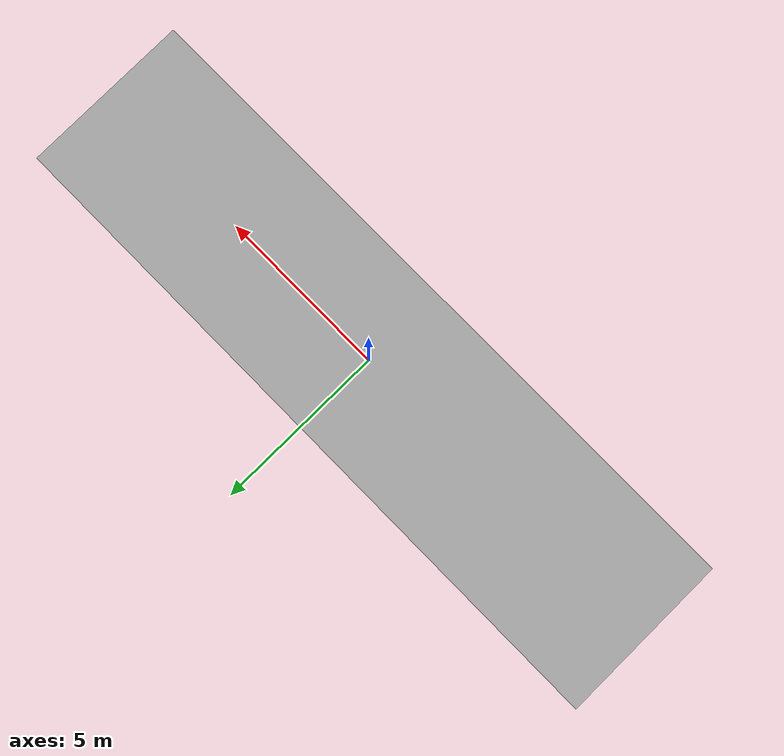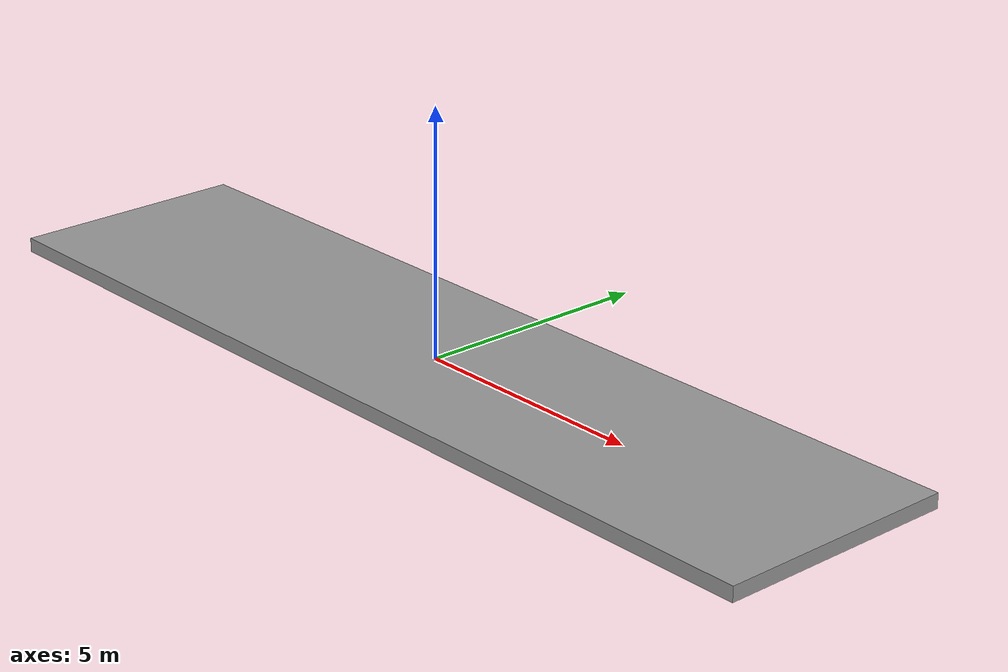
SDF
<?xml version="1.0" ?>
<sdf version="1.5">
  <model name="sidewall">
    <static>true</static>
    <link name='link'>
      <collision name="collision">
        <geometry>
          <box>
            <size>20 5 0.3</size>
          </box>
        </geometry>
        <surface>
          <contact>
            <collide_bitmask>0xffff</collide_bitmask>
          </contact>
          <friction>
            <ode>
              <mu>100</mu>
              <mu2>50</mu2>
            </ode>
          </friction>
        </surface>
      </collision>
      <visual name='visual'>
        <geometry>
          <box>
            <size>20 5 0.3</size>
          </box>
        </geometry>
        <material>
          <lighting>1</lighting>
          <script>
            <uri>file://media/materials/scripts/gazebo.material</uri>
            <name>Gazebo/Grey</name>
          </script>
        </material>
      </visual>
    </link>
  </model>
</sdf>
